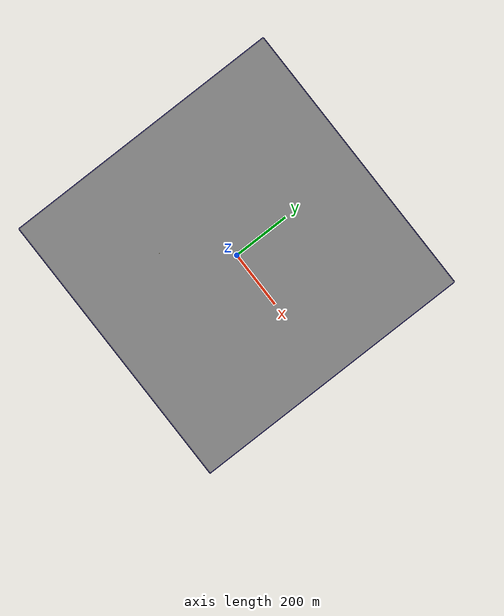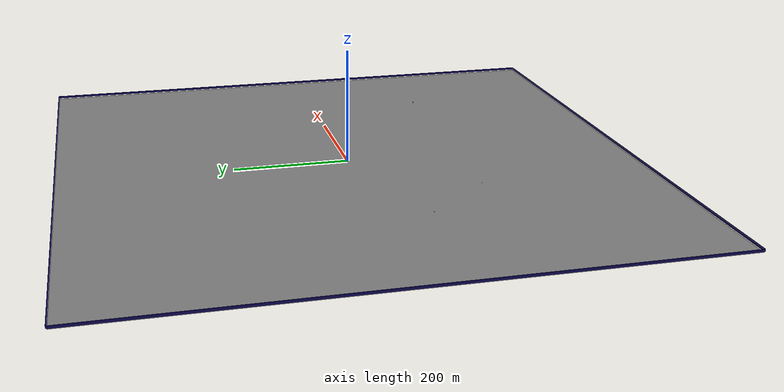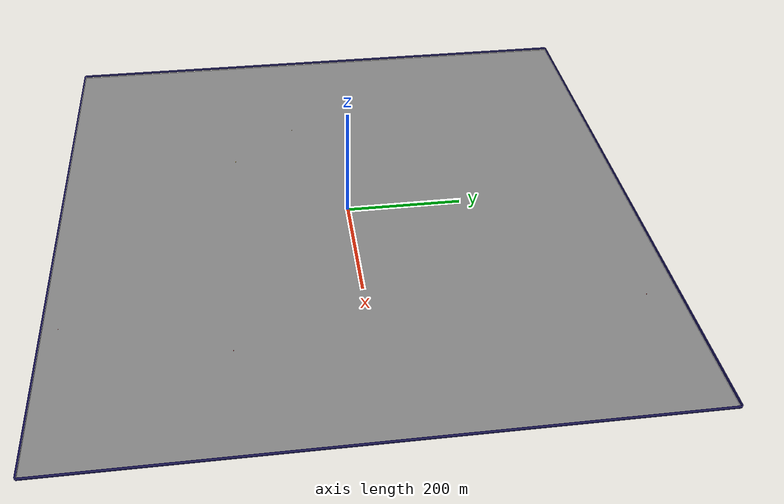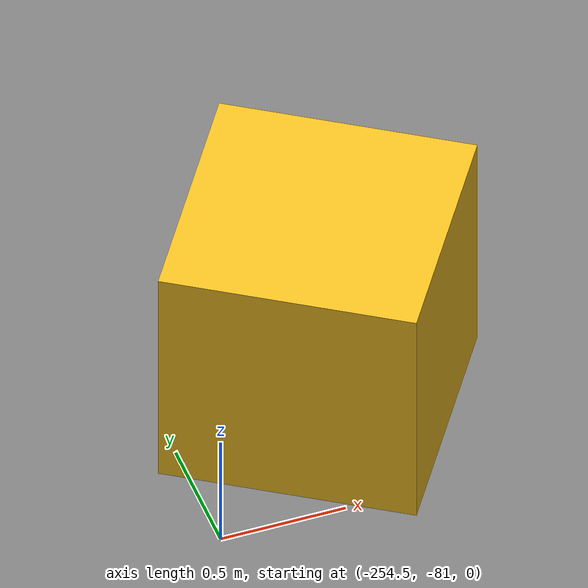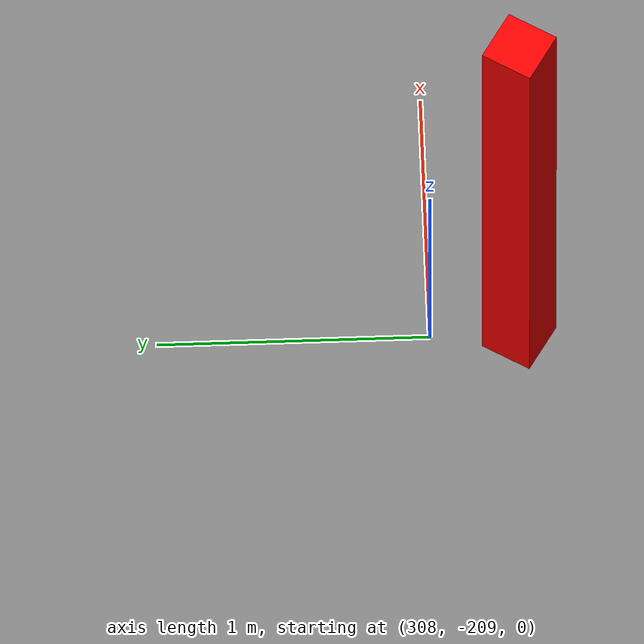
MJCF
<mujoco model="unnamed_model">
  <default>
    <default class="/" />
    <default class="border/" />
    <default class="border_1/" />
    <default class="border_2/" />
    <default class="border_3/" />
    <default class="agentplaceholder/" />
    <default class="placeholder_box/" />
    <default class="tree0/" />
    <default class="tree1/" />
    <default class="stone/" />
    <default class="stone_1/" />
  </default>
  <worldbody>
    <body name="border/">
      <body name="border/border" pos="0 501 2">
        <geom name="border/border_geom" class="border/" type="box" size="500 1 2" rgba="0.035000000000000003 0.016 0.28999999999999998 1" />
      </body>
    </body>
    <body name="border_1/">
      <body name="border_1/border" pos="0 -501 2">
        <geom name="border_1/border_geom" class="border_1/" type="box" size="500 1 2" rgba="0.035000000000000003 0.016 0.28999999999999998 1" />
      </body>
    </body>
    <body name="border_2/">
      <body name="border_2/border" pos="501 0 2">
        <geom name="border_2/border_geom" class="border_2/" type="box" size="1 500 2" rgba="0.035000000000000003 0.016 0.28999999999999998 1" />
      </body>
    </body>
    <body name="border_3/">
      <body name="border_3/border" pos="-501 0 2">
        <geom name="border_3/border_geom" class="border_3/" type="box" size="1 500 2" rgba="0.035000000000000003 0.016 0.28999999999999998 1" />
      </body>
    </body>
    <body euler="0 0 50.41316304789359" name="agentplaceholder/">
      <joint name="agentplaceholder/boxagent_freeJoint/" class="/" type="free" />
      <body name="agentplaceholder/agentplaceholder" pos="-250 0 3" euler="0 0 0">
        <geom name="agentplaceholder/boxagent_geom" class="agentplaceholder/" type="box" size="0.5 0.5 0.5" rgba="0.94899999999999995 0.74509999999999998 0.1333 1" euler="0 0 0" />
      </body>
    </body>
    <body name="placeholder_box/">
      <body name="placeholder_box/placeholder_box" pos="-253.9091 -80.437000000000012 0.5" euler="0 0 146.92122109768871">
        <geom name="placeholder_box/box_geom" class="placeholder_box/" type="box" size="0.5 0.5 0.5" rgba="0.94899999999999995 0.74509999999999998 0.1333 1" euler="0 0 0" />
      </body>
    </body>
    <body name="tree0/">
      <body name="tree0/tree0" pos="266.94725 448.0575 0.10000000000000001" euler="0 0 1.5331120083156691">
        <geom name="tree0/tree_geom" class="tree0/" type="box" size="0.10000000000000001 0.10000000000000001 2" rgba="1 0 0 1" />
      </body>
    </body>
    <body name="tree1/">
      <body name="tree1/tree1" pos="307.99360000000001 -209.32510000000002 0.10000000000000001" euler="0 0 -31.189630876919153">
        <geom name="tree1/tree_geom" class="tree1/" type="box" size="0.10000000000000001 0.10000000000000001 2" rgba="1 0 0 1" />
      </body>
    </body>
    <body name="stone/">
      <body name="stone/stone" pos="182.8451 105.33510000000001 0.10000000000000001" euler="0 0 159.74498321966746">
        <geom name="stone/stone_geom" class="stone/" type="box" size="0.10000000000000001 0.10000000000000001 2" rgba="1 0 0 1" />
      </body>
    </body>
    <body name="stone_1/">
      <body name="stone_1/stone" pos="232.31645 -475.70510000000002 0.10000000000000001" euler="0 0 119.34670840991691">
        <geom name="stone_1/stone_geom" class="stone_1/" type="box" size="0.10000000000000001 0.10000000000000001 2" rgba="1 0 0 1" />
      </body>
    </body>
    <geom name="base_plane" class="/" type="plane" size="500 500 0.10000000000000001" />
  </worldbody>
</mujoco>
